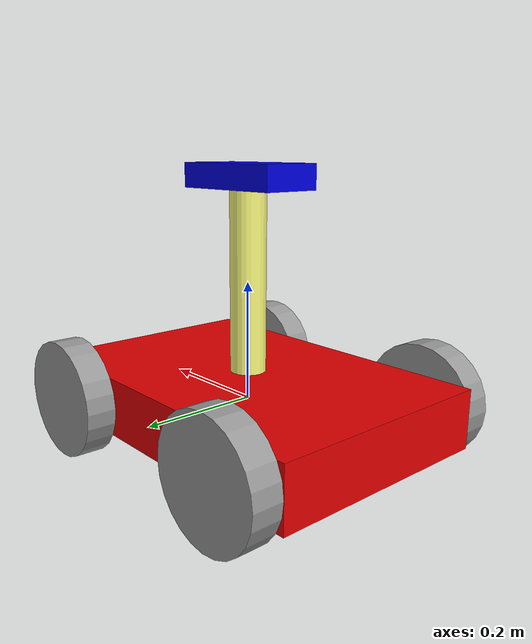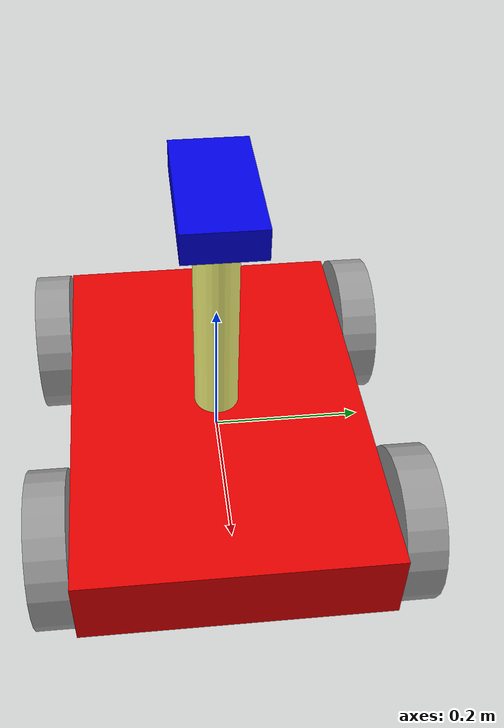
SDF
<?xml version='1.0'?>
<sdf version='1.6'>
  <model name='MyInspectionRobot'>
    <link name='link_10'>
      <pose frame=''>0 0 0.37 0 -0 0</pose>
      <inertial>
        <mass>1</mass>
        <inertia>
          <ixx>0.166667</ixx>
          <ixy>0</ixy>
          <ixz>0</ixz>
          <iyy>0.166667</iyy>
          <iyz>0</iyz>
          <izz>0.166667</izz>
        </inertia>
        <pose frame=''>0 0 0 0 -0 0</pose>
      </inertial>
      <gravity>1</gravity>
      <self_collide>0</self_collide>
      <kinematic>0</kinematic>
      <visual name='visual'>
        <pose frame=''>0 0 0 0 -0 0</pose>
        <geometry>
          <box>
            <size>0.2 0.1 0.04</size>
          </box>
        </geometry>
        <material>
          <lighting>1</lighting>
          <script>
            <uri>file://media/materials/scripts/gazebo.material</uri>
            <name>Gazebo/Grey</name>
          </script>
          <ambient>0.3 0.3 0.3 1</ambient>
          <diffuse>0 0 0.9 1</diffuse>
          <specular>0.01 0.01 0.01 1</specular>
          <emissive>0 0 0 1</emissive>
          <shader type='vertex'>
            <normal_map>__default__</normal_map>
          </shader>
        </material>
        <cast_shadows>1</cast_shadows>
        <transparency>0</transparency>
      </visual>
      <collision name='collision'>
        <laser_retro>0</laser_retro>
        <max_contacts>10</max_contacts>
        <pose frame=''>0 0 0 0 -0 0</pose>
        <geometry>
          <box>
            <size>0.2 0.1 0.04</size>
          </box>
        </geometry>
        <surface>
          <friction>
            <ode>
              <mu>1</mu>
              <mu2>1</mu2>
              <fdir1>0 0 0</fdir1>
              <slip1>0</slip1>
              <slip2>0</slip2>
            </ode>
            <torsional>
              <coefficient>1</coefficient>
              <patch_radius>0</patch_radius>
              <surface_radius>0</surface_radius>
              <use_patch_radius>1</use_patch_radius>
              <ode>
                <slip>0</slip>
              </ode>
            </torsional>
          </friction>
          <bounce>
            <restitution_coefficient>0</restitution_coefficient>
            <threshold>1e+06</threshold>
          </bounce>
          <contact>
            <collide_without_contact>0</collide_without_contact>
            <collide_without_contact_bitmask>1</collide_without_contact_bitmask>
            <collide_bitmask>1</collide_bitmask>
            <ode>
              <soft_cfm>0</soft_cfm>
              <soft_erp>0.2</soft_erp>
              <kp>1e+13</kp>
              <kd>1</kd>
              <max_vel>0.01</max_vel>
              <min_depth>0</min_depth>
            </ode>
            <bullet>
              <split_impulse>1</split_impulse>
              <split_impulse_penetration_threshold>-0.01</split_impulse_penetration_threshold>
              <soft_cfm>0</soft_cfm>
              <soft_erp>0.2</soft_erp>
              <kp>1e+13</kp>
              <kd>1</kd>
            </bullet>
          </contact>
        </surface>
      </collision>
    </link>
    <link name='link_6'>
      <pose frame=''>0 0 0 0 -0 0</pose>
      <inertial>
        <mass>1</mass>
        <inertia>
          <ixx>0.166667</ixx>
          <ixy>0</ixy>
          <ixz>0</ixz>
          <iyy>0.166667</iyy>
          <iyz>0</iyz>
          <izz>0.166667</izz>
        </inertia>
        <pose frame=''>0 0 0 0 -0 0</pose>
      </inertial>
      <gravity>1</gravity>
      <self_collide>0</self_collide>
      <kinematic>0</kinematic>
      <visual name='visual'>
        <pose frame=''>0 0 0 0 -0 0</pose>
        <geometry>
          <box>
            <size>0.6 0.4 0.1</size>
          </box>
        </geometry>
        <material>
          <lighting>1</lighting>
          <script>
            <uri>file://media/materials/scripts/gazebo.material</uri>
            <name>Gazebo/Grey</name>
          </script>
          <ambient>0.3 0.3 0.3 1</ambient>
          <diffuse>0.9 0 0 1</diffuse>
          <specular>0.01 0.01 0.01 1</specular>
          <emissive>0 0 0 1</emissive>
          <shader type='vertex'>
            <normal_map>__default__</normal_map>
          </shader>
        </material>
        <cast_shadows>1</cast_shadows>
        <transparency>0</transparency>
      </visual>
      <collision name='collision'>
        <laser_retro>0</laser_retro>
        <max_contacts>10</max_contacts>
        <pose frame=''>0 0 0 0 -0 0</pose>
        <geometry>
          <box>
            <size>0.6 0.4 0.1</size>
          </box>
        </geometry>
        <surface>
          <friction>
            <ode>
              <mu>1</mu>
              <mu2>1</mu2>
              <fdir1>0 0 0</fdir1>
              <slip1>0</slip1>
              <slip2>0</slip2>
            </ode>
            <torsional>
              <coefficient>1</coefficient>
              <patch_radius>0</patch_radius>
              <surface_radius>0</surface_radius>
              <use_patch_radius>1</use_patch_radius>
              <ode>
                <slip>0</slip>
              </ode>
            </torsional>
          </friction>
          <bounce>
            <restitution_coefficient>0</restitution_coefficient>
            <threshold>1e+06</threshold>
          </bounce>
          <contact>
            <collide_without_contact>0</collide_without_contact>
            <collide_without_contact_bitmask>1</collide_without_contact_bitmask>
            <collide_bitmask>1</collide_bitmask>
            <ode>
              <soft_cfm>0</soft_cfm>
              <soft_erp>0.2</soft_erp>
              <kp>1e+13</kp>
              <kd>1</kd>
              <max_vel>0.01</max_vel>
              <min_depth>0</min_depth>
            </ode>
            <bullet>
              <split_impulse>1</split_impulse>
              <split_impulse_penetration_threshold>-0.01</split_impulse_penetration_threshold>
              <soft_cfm>0</soft_cfm>
              <soft_erp>0.2</soft_erp>
              <kp>1e+13</kp>
              <kd>1</kd>
            </bullet>
          </contact>
        </surface>
      </collision>
    </link>
    <link name='link_8'>
      <pose frame=''>-0.2 -0.22501 0 1.5707 -0 0</pose>
      <inertial>
        <mass>1</mass>
        <inertia>
          <ixx>0.145833</ixx>
          <ixy>0</ixy>
          <ixz>0</ixz>
          <iyy>0.145833</iyy>
          <iyz>0</iyz>
          <izz>0.125</izz>
        </inertia>
        <pose frame=''>0 0 0 0 -0 0</pose>
      </inertial>
      <gravity>1</gravity>
      <self_collide>0</self_collide>
      <kinematic>0</kinematic>
      <visual name='visual'>
        <pose frame=''>0 0 0 0 -0 0</pose>
        <geometry>
          <cylinder>
            <radius>0.1</radius>
            <length>0.05</length>
          </cylinder>
        </geometry>
        <material>
          <lighting>1</lighting>
          <script>
            <uri>file://media/materials/scripts/gazebo.material</uri>
            <name>Gazebo/Grey</name>
          </script>
          <ambient>0.3 0.3 0.3 1</ambient>
          <diffuse>0 0 0 1</diffuse>
          <specular>0.01 0.01 0.01 1</specular>
          <emissive>0 0 0 1</emissive>
          <shader type='vertex'>
            <normal_map>__default__</normal_map>
          </shader>
        </material>
        <cast_shadows>1</cast_shadows>
        <transparency>0</transparency>
      </visual>
      <collision name='collision'>
        <laser_retro>0</laser_retro>
        <max_contacts>10</max_contacts>
        <pose frame=''>0 0 0 0 -0 0</pose>
        <geometry>
          <cylinder>
            <radius>0.1</radius>
            <length>0.05</length>
          </cylinder>
        </geometry>
        <surface>
          <friction>
            <ode>
              <mu>1</mu>
              <mu2>1</mu2>
              <fdir1>0 0 0</fdir1>
              <slip1>0</slip1>
              <slip2>0</slip2>
            </ode>
            <torsional>
              <coefficient>1</coefficient>
              <patch_radius>0</patch_radius>
              <surface_radius>0</surface_radius>
              <use_patch_radius>1</use_patch_radius>
              <ode>
                <slip>0</slip>
              </ode>
            </torsional>
          </friction>
          <bounce>
            <restitution_coefficient>0</restitution_coefficient>
            <threshold>1e+06</threshold>
          </bounce>
          <contact>
            <collide_without_contact>0</collide_without_contact>
            <collide_without_contact_bitmask>1</collide_without_contact_bitmask>
            <collide_bitmask>1</collide_bitmask>
            <ode>
              <soft_cfm>0</soft_cfm>
              <soft_erp>0.2</soft_erp>
              <kp>1e+13</kp>
              <kd>1</kd>
              <max_vel>0.01</max_vel>
              <min_depth>0</min_depth>
            </ode>
            <bullet>
              <split_impulse>1</split_impulse>
              <split_impulse_penetration_threshold>-0.01</split_impulse_penetration_threshold>
              <soft_cfm>0</soft_cfm>
              <soft_erp>0.2</soft_erp>
              <kp>1e+13</kp>
              <kd>1</kd>
            </bullet>
          </contact>
        </surface>
      </collision>
    </link>
    <link name='link_8_clone'>
      <pose frame=''>-0.2 0.22501 0 1.5707 -0 0</pose>
      <inertial>
        <mass>1</mass>
        <inertia>
          <ixx>0.145833</ixx>
          <ixy>0</ixy>
          <ixz>0</ixz>
          <iyy>0.145833</iyy>
          <iyz>0</iyz>
          <izz>0.125</izz>
        </inertia>
        <pose frame=''>0 0 0 0 -0 0</pose>
      </inertial>
      <self_collide>0</self_collide>
      <kinematic>0</kinematic>
      <gravity>1</gravity>
      <visual name='visual'>
        <pose frame=''>0 0 0 0 -0 0</pose>
        <geometry>
          <cylinder>
            <radius>0.1</radius>
            <length>0.05</length>
          </cylinder>
        </geometry>
        <material>
          <lighting>1</lighting>
          <script>
            <uri>file://media/materials/scripts/gazebo.material</uri>
            <name>Gazebo/Grey</name>
          </script>
          <ambient>0.3 0.3 0.3 1</ambient>
          <diffuse>0 0 0 1</diffuse>
          <specular>0.01 0.01 0.01 1</specular>
          <emissive>0 0 0 1</emissive>
          <shader type='vertex'>
            <normal_map>__default__</normal_map>
          </shader>
        </material>
        <cast_shadows>1</cast_shadows>
        <transparency>0</transparency>
      </visual>
      <collision name='collision'>
        <laser_retro>0</laser_retro>
        <max_contacts>10</max_contacts>
        <pose frame=''>0 0 0 0 -0 0</pose>
        <geometry>
          <cylinder>
            <radius>0.1</radius>
            <length>0.05</length>
          </cylinder>
        </geometry>
        <surface>
          <friction>
            <ode>
              <mu>1</mu>
              <mu2>1</mu2>
              <fdir1>0 0 0</fdir1>
              <slip1>0</slip1>
              <slip2>0</slip2>
            </ode>
            <torsional>
              <coefficient>1</coefficient>
              <patch_radius>0</patch_radius>
              <surface_radius>0</surface_radius>
              <use_patch_radius>1</use_patch_radius>
              <ode>
                <slip>0</slip>
              </ode>
            </torsional>
          </friction>
          <bounce>
            <restitution_coefficient>0</restitution_coefficient>
            <threshold>1e+06</threshold>
          </bounce>
          <contact>
            <collide_without_contact>0</collide_without_contact>
            <collide_without_contact_bitmask>1</collide_without_contact_bitmask>
            <collide_bitmask>1</collide_bitmask>
            <ode>
              <soft_cfm>0</soft_cfm>
              <soft_erp>0.2</soft_erp>
              <kp>1e+13</kp>
              <kd>1</kd>
              <max_vel>0.01</max_vel>
              <min_depth>0</min_depth>
            </ode>
            <bullet>
              <split_impulse>1</split_impulse>
              <split_impulse_penetration_threshold>-0.01</split_impulse_penetration_threshold>
              <soft_cfm>0</soft_cfm>
              <soft_erp>0.2</soft_erp>
              <kp>1e+13</kp>
              <kd>1</kd>
            </bullet>
          </contact>
        </surface>
      </collision>
    </link>
    <link name='link_8_clone_clone'>
      <pose frame=''>0.2 -0.22501 0 1.5707 -0 0</pose>
      <inertial>
        <mass>1</mass>
        <inertia>
          <ixx>0.145833</ixx>
          <ixy>0</ixy>
          <ixz>0</ixz>
          <iyy>0.145833</iyy>
          <iyz>0</iyz>
          <izz>0.125</izz>
        </inertia>
        <pose frame=''>0 0 0 0 -0 0</pose>
      </inertial>
      <self_collide>0</self_collide>
      <kinematic>0</kinematic>
      <gravity>1</gravity>
      <visual name='visual'>
        <pose frame=''>0 0 0 0 -0 0</pose>
        <geometry>
          <cylinder>
            <radius>0.1</radius>
            <length>0.05</length>
          </cylinder>
        </geometry>
        <material>
          <lighting>1</lighting>
          <script>
            <uri>file://media/materials/scripts/gazebo.material</uri>
            <name>Gazebo/Grey</name>
          </script>
          <ambient>0.3 0.3 0.3 1</ambient>
          <diffuse>0 0 0 1</diffuse>
          <specular>0.01 0.01 0.01 1</specular>
          <emissive>0 0 0 1</emissive>
          <shader type='vertex'>
            <normal_map>__default__</normal_map>
          </shader>
        </material>
        <cast_shadows>1</cast_shadows>
        <transparency>0</transparency>
      </visual>
      <collision name='collision'>
        <laser_retro>0</laser_retro>
        <max_contacts>10</max_contacts>
        <pose frame=''>0 0 0 0 -0 0</pose>
        <geometry>
          <cylinder>
            <radius>0.1</radius>
            <length>0.05</length>
          </cylinder>
        </geometry>
        <surface>
          <friction>
            <ode>
              <mu>1</mu>
              <mu2>1</mu2>
              <fdir1>0 0 0</fdir1>
              <slip1>0</slip1>
              <slip2>0</slip2>
            </ode>
            <torsional>
              <coefficient>1</coefficient>
              <patch_radius>0</patch_radius>
              <surface_radius>0</surface_radius>
              <use_patch_radius>1</use_patch_radius>
              <ode>
                <slip>0</slip>
              </ode>
            </torsional>
          </friction>
          <bounce>
            <restitution_coefficient>0</restitution_coefficient>
            <threshold>1e+06</threshold>
          </bounce>
          <contact>
            <collide_without_contact>0</collide_without_contact>
            <collide_without_contact_bitmask>1</collide_without_contact_bitmask>
            <collide_bitmask>1</collide_bitmask>
            <ode>
              <soft_cfm>0</soft_cfm>
              <soft_erp>0.2</soft_erp>
              <kp>1e+13</kp>
              <kd>1</kd>
              <max_vel>0.01</max_vel>
              <min_depth>0</min_depth>
            </ode>
            <bullet>
              <split_impulse>1</split_impulse>
              <split_impulse_penetration_threshold>-0.01</split_impulse_penetration_threshold>
              <soft_cfm>0</soft_cfm>
              <soft_erp>0.2</soft_erp>
              <kp>1e+13</kp>
              <kd>1</kd>
            </bullet>
          </contact>
        </surface>
      </collision>
    </link>
    <link name='link_8_clone_clone_clone'>
      <pose frame=''>0.2 0.22501 0 1.5707 -0 0</pose>
      <inertial>
        <mass>1</mass>
        <inertia>
          <ixx>0.145833</ixx>
          <ixy>0</ixy>
          <ixz>0</ixz>
          <iyy>0.145833</iyy>
          <iyz>0</iyz>
          <izz>0.125</izz>
        </inertia>
        <pose frame=''>0 0 0 0 -0 0</pose>
      </inertial>
      <self_collide>0</self_collide>
      <kinematic>0</kinematic>
      <gravity>1</gravity>
      <visual name='visual'>
        <pose frame=''>0 0 0 0 -0 0</pose>
        <geometry>
          <cylinder>
            <radius>0.1</radius>
            <length>0.05</length>
          </cylinder>
        </geometry>
        <material>
          <lighting>1</lighting>
          <script>
            <uri>file://media/materials/scripts/gazebo.material</uri>
            <name>Gazebo/Grey</name>
          </script>
          <ambient>0.3 0.3 0.3 1</ambient>
          <diffuse>0 0 0 1</diffuse>
          <specular>0.01 0.01 0.01 1</specular>
          <emissive>0 0 0 1</emissive>
          <shader type='vertex'>
            <normal_map>__default__</normal_map>
          </shader>
        </material>
        <cast_shadows>1</cast_shadows>
        <transparency>0</transparency>
      </visual>
      <collision name='collision'>
        <laser_retro>0</laser_retro>
        <max_contacts>10</max_contacts>
        <pose frame=''>0 0 0 0 -0 0</pose>
        <geometry>
          <cylinder>
            <radius>0.1</radius>
            <length>0.05</length>
          </cylinder>
        </geometry>
        <surface>
          <friction>
            <ode>
              <mu>1</mu>
              <mu2>1</mu2>
              <fdir1>0 0 0</fdir1>
              <slip1>0</slip1>
              <slip2>0</slip2>
            </ode>
            <torsional>
              <coefficient>1</coefficient>
              <patch_radius>0</patch_radius>
              <surface_radius>0</surface_radius>
              <use_patch_radius>1</use_patch_radius>
              <ode>
                <slip>0</slip>
              </ode>
            </torsional>
          </friction>
          <bounce>
            <restitution_coefficient>0</restitution_coefficient>
            <threshold>1e+06</threshold>
          </bounce>
          <contact>
            <collide_without_contact>0</collide_without_contact>
            <collide_without_contact_bitmask>1</collide_without_contact_bitmask>
            <collide_bitmask>1</collide_bitmask>
            <ode>
              <soft_cfm>0</soft_cfm>
              <soft_erp>0.2</soft_erp>
              <kp>1e+13</kp>
              <kd>1</kd>
              <max_vel>0.01</max_vel>
              <min_depth>0</min_depth>
            </ode>
            <bullet>
              <split_impulse>1</split_impulse>
              <split_impulse_penetration_threshold>-0.01</split_impulse_penetration_threshold>
              <soft_cfm>0</soft_cfm>
              <soft_erp>0.2</soft_erp>
              <kp>1e+13</kp>
              <kd>1</kd>
            </bullet>
          </contact>
        </surface>
      </collision>
    </link>
    <link name='link_9'>
      <pose frame=''>0 0 0.2 0 -0 0</pose>
      <inertial>
        <mass>1</mass>
        <inertia>
          <ixx>0.145833</ixx>
          <ixy>0</ixy>
          <ixz>0</ixz>
          <iyy>0.145833</iyy>
          <iyz>0</iyz>
          <izz>0.125</izz>
        </inertia>
        <pose frame=''>0 0 0 0 -0 0</pose>
      </inertial>
      <gravity>1</gravity>
      <self_collide>0</self_collide>
      <kinematic>0</kinematic>
      <visual name='visual'>
        <pose frame=''>0 0 0 0 -0 0</pose>
        <geometry>
          <cylinder>
            <radius>0.03</radius>
            <length>0.3</length>
          </cylinder>
        </geometry>
        <material>
          <lighting>1</lighting>
          <script>
            <uri>file://media/materials/scripts/gazebo.material</uri>
            <name>Gazebo/Grey</name>
          </script>
          <ambient>0.3 0.3 0.3 1</ambient>
          <diffuse>1 1 0.5 1</diffuse>
          <specular>0.01 0.01 0.01 1</specular>
          <emissive>0 0 0 1</emissive>
          <shader type='vertex'>
            <normal_map>__default__</normal_map>
          </shader>
        </material>
        <cast_shadows>1</cast_shadows>
        <transparency>0</transparency>
      </visual>
      <collision name='collision'>
        <laser_retro>0</laser_retro>
        <max_contacts>10</max_contacts>
        <pose frame=''>0 0 0 0 -0 0</pose>
        <geometry>
          <cylinder>
            <radius>0.03</radius>
            <length>0.3</length>
          </cylinder>
        </geometry>
        <surface>
          <friction>
            <ode>
              <mu>1</mu>
              <mu2>1</mu2>
              <fdir1>0 0 0</fdir1>
              <slip1>0</slip1>
              <slip2>0</slip2>
            </ode>
            <torsional>
              <coefficient>1</coefficient>
              <patch_radius>0</patch_radius>
              <surface_radius>0</surface_radius>
              <use_patch_radius>1</use_patch_radius>
              <ode>
                <slip>0</slip>
              </ode>
            </torsional>
          </friction>
          <bounce>
            <restitution_coefficient>0</restitution_coefficient>
            <threshold>1e+06</threshold>
          </bounce>
          <contact>
            <collide_without_contact>0</collide_without_contact>
            <collide_without_contact_bitmask>1</collide_without_contact_bitmask>
            <collide_bitmask>1</collide_bitmask>
            <ode>
              <soft_cfm>0</soft_cfm>
              <soft_erp>0.2</soft_erp>
              <kp>1e+13</kp>
              <kd>1</kd>
              <max_vel>0.01</max_vel>
              <min_depth>0</min_depth>
            </ode>
            <bullet>
              <split_impulse>1</split_impulse>
              <split_impulse_penetration_threshold>-0.01</split_impulse_penetration_threshold>
              <soft_cfm>0</soft_cfm>
              <soft_erp>0.2</soft_erp>
              <kp>1e+13</kp>
              <kd>1</kd>
            </bullet>
          </contact>
        </surface>
      </collision>
    </link>
    <joint name='link_6_JOINT_1' type='revolute'>
      <parent>link_6</parent>
      <child>link_8</child>
      <pose frame=''>0 0 0 0 -0 0</pose>
      <axis>
        <xyz>0 0 1</xyz>
        <use_parent_model_frame>0</use_parent_model_frame>
        <limit>
          <lower>-1.79769e+308</lower>
          <upper>1.79769e+308</upper>
          <effort>-1</effort>
          <velocity>-1</velocity>
        </limit>
        <dynamics>
          <spring_reference>0</spring_reference>
          <spring_stiffness>0</spring_stiffness>
          <damping>0</damping>
        </dynamics>
      </axis>
      <physics>
        <ode>
          <limit>
            <cfm>0</cfm>
            <erp>0.2</erp>
          </limit>
          <suspension>
            <cfm>0</cfm>
            <erp>0.2</erp>
          </suspension>
        </ode>
      </physics>
    </joint>
    <joint name='link_6_JOINT_2' type='revolute'>
      <parent>link_6</parent>
      <child>link_8_clone</child>
      <pose frame=''>0 0 0 0 -0 0</pose>
      <axis>
        <xyz>0 0 1</xyz>
        <use_parent_model_frame>0</use_parent_model_frame>
        <limit>
          <lower>-1.79769e+308</lower>
          <upper>1.79769e+308</upper>
          <effort>-1</effort>
          <velocity>-1</velocity>
        </limit>
        <dynamics>
          <spring_reference>0</spring_reference>
          <spring_stiffness>0</spring_stiffness>
          <damping>0</damping>
        </dynamics>
      </axis>
      <physics>
        <ode>
          <limit>
            <cfm>0</cfm>
            <erp>0.2</erp>
          </limit>
          <suspension>
            <cfm>0</cfm>
            <erp>0.2</erp>
          </suspension>
        </ode>
      </physics>
    </joint>
    <joint name='link_6_JOINT_3' type='revolute'>
      <parent>link_6</parent>
      <child>link_8_clone_clone</child>
      <pose frame=''>0 0 0 0 -0 0</pose>
      <axis>
        <xyz>0 0 1</xyz>
        <use_parent_model_frame>0</use_parent_model_frame>
        <limit>
          <lower>-1.79769e+308</lower>
          <upper>1.79769e+308</upper>
          <effort>-1</effort>
          <velocity>-1</velocity>
        </limit>
        <dynamics>
          <spring_reference>0</spring_reference>
          <spring_stiffness>0</spring_stiffness>
          <damping>0</damping>
        </dynamics>
      </axis>
      <physics>
        <ode>
          <limit>
            <cfm>0</cfm>
            <erp>0.2</erp>
          </limit>
          <suspension>
            <cfm>0</cfm>
            <erp>0.2</erp>
          </suspension>
        </ode>
      </physics>
    </joint>
    <joint name='link_6_JOINT_4' type='revolute'>
      <parent>link_6</parent>
      <child>link_8_clone_clone_clone</child>
      <pose frame=''>0 0 0 0 -0 0</pose>
      <axis>
        <xyz>0 0 1</xyz>
        <use_parent_model_frame>0</use_parent_model_frame>
        <limit>
          <lower>-1.79769e+308</lower>
          <upper>1.79769e+308</upper>
          <effort>-1</effort>
          <velocity>-1</velocity>
        </limit>
        <dynamics>
          <spring_reference>0</spring_reference>
          <spring_stiffness>0</spring_stiffness>
          <damping>0</damping>
        </dynamics>
      </axis>
      <physics>
        <ode>
          <limit>
            <cfm>0</cfm>
            <erp>0.2</erp>
          </limit>
          <suspension>
            <cfm>0</cfm>
            <erp>0.2</erp>
          </suspension>
        </ode>
      </physics>
    </joint>
    <joint name='link_6_JOINT_5' type='revolute'>
      <parent>link_6</parent>
      <child>link_9</child>
      <pose frame=''>0 0 -0.15 0 -0 0</pose>
      <axis>
        <xyz>0 0 1</xyz>
        <use_parent_model_frame>0</use_parent_model_frame>
        <limit>
          <lower>-1.79769e+308</lower>
          <upper>1.79769e+308</upper>
          <effort>-1</effort>
          <velocity>-1</velocity>
        </limit>
        <dynamics>
          <spring_reference>0</spring_reference>
          <spring_stiffness>0</spring_stiffness>
          <damping>0</damping>
        </dynamics>
      </axis>
      <physics>
        <ode>
          <limit>
            <cfm>0</cfm>
            <erp>0.2</erp>
          </limit>
          <suspension>
            <cfm>0</cfm>
            <erp>0.2</erp>
          </suspension>
        </ode>
      </physics>
    </joint>
    <joint name='link_9_JOINT_7' type='revolute'>
      <parent>link_9</parent>
      <child>link_10</child>
      <pose frame=''>0 0 -0.02 0 -0 0</pose>
      <axis>
        <xyz>0 0 1</xyz>
        <use_parent_model_frame>0</use_parent_model_frame>
        <limit>
          <lower>-1.79769e+308</lower>
          <upper>1.79769e+308</upper>
          <effort>-1</effort>
          <velocity>-1</velocity>
        </limit>
        <dynamics>
          <spring_reference>0</spring_reference>
          <spring_stiffness>0</spring_stiffness>
          <damping>0</damping>
        </dynamics>
      </axis>
      <physics>
        <ode>
          <limit>
            <cfm>0</cfm>
            <erp>0.2</erp>
          </limit>
          <suspension>
            <cfm>0</cfm>
            <erp>0.2</erp>
          </suspension>
        </ode>
      </physics>
    </joint>
    <static>0</static>
    <allow_auto_disable>1</allow_auto_disable>
  </model>
</sdf>
